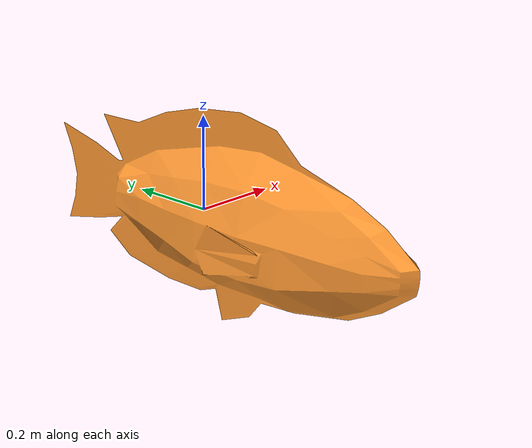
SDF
<?xml version="1.0" ?>
<sdf version="1.6">
  <model name="fish1">
    <link name="base_link">
      <collision name="collision">
        <geometry>
          <sphere>
            <radius>0.5</radius>
          </sphere>
        </geometry>
      </collision>

      <visual name="visual">
        <geometry>
          <mesh>
            <uri>meshes/fish.dae</uri>
            <scale>0.1 0.1 0.1</scale>
          </mesh>
        </geometry>

        <material>
          <ambient>1 0.7 0.2 1</ambient>
          <diffuse>1.0 0.6 0.2 1.0</diffuse>
          <specular>0.5 0.5 0.5 1.0</specular>
          <emissive>0.3 0.15 0.05 1.0</emissive>
        </material>
      </visual>

    </link>

    <plugin name="fish1_animate" filename="libanimated_fish1.so"/>
  </model>
</sdf>
